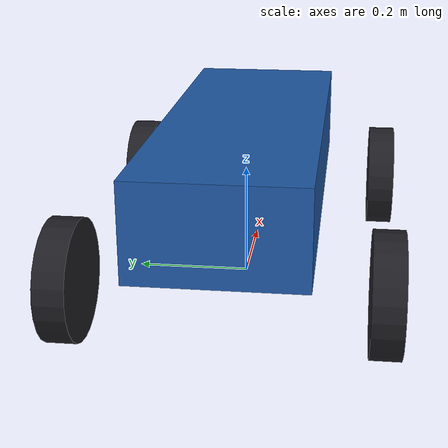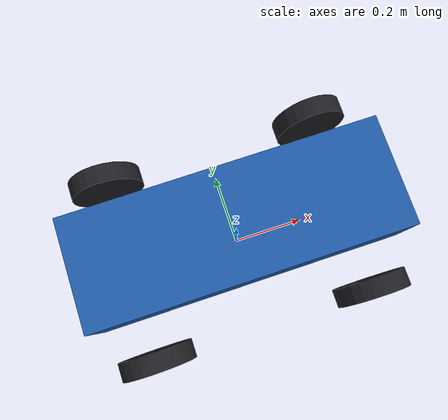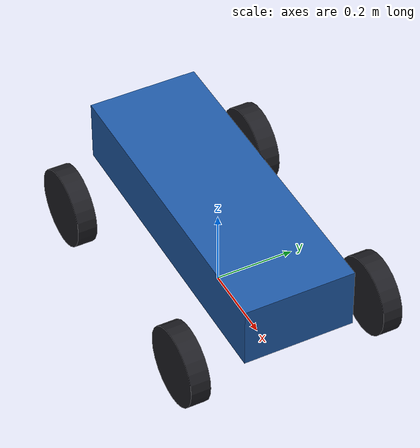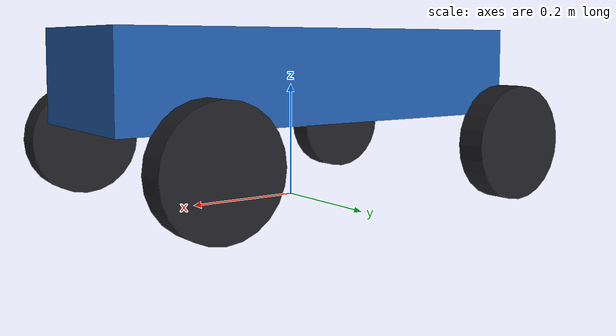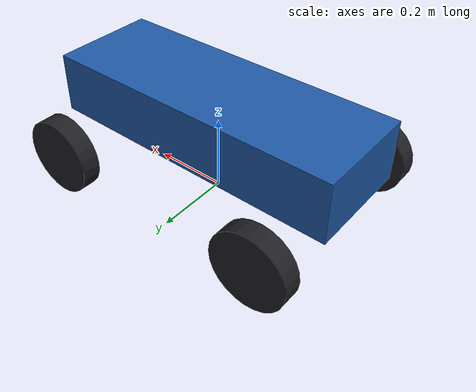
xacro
<?xml version="1.0"?>
<!-- SPDX-License-Identifier: Apache-2.0 -->
<robot xmlns:xacro="http://www.ros.org/wiki/xacro" name="swerve">
  <xacro:arg name="wheelbase" default="0.60"/>
  <xacro:arg name="track_width" default="0.50"/>
  <xacro:arg name="wheel_radius" default="0.10"/>
  <xacro:arg name="wheel_width" default="0.05"/>
  <xacro:arg name="body_length" default="0.80"/>
  <xacro:arg name="body_width" default="0.28"/>
  <xacro:arg name="body_height" default="0.16"/>
  <xacro:arg name="ground_clearance" default="0.14"/>
  <xacro:arg name="body_mass" default="20.0"/>
  <xacro:arg name="wheel_mass" default="0.6"/>
  <xacro:arg name="steering_mass" default="0.2"/>
  <xacro:arg name="steering_limit" default="1.5707963267948966"/>
  <xacro:arg name="max_wheel_speed" default="20.0"/>
  <xacro:arg name="max_steering_rate" default="2.5"/>
  <xacro:arg name="prefix" default=""/>
  <xacro:arg name="namespace" default=""/>
  <xacro:arg name="controllers_file" default=""/>
  <xacro:arg name="enable_control" default="true"/>
  <xacro:arg name="publish_ground_truth" default="false"/>
  <xacro:arg name="robot_name" default="swerve"/>
  <xacro:property name="p" value="$(arg prefix)"/>
  <xacro:property name="wb" value="$(arg wheelbase)"/>
  <xacro:property name="tw" value="$(arg track_width)"/>
  <xacro:property name="r" value="$(arg wheel_radius)"/>
  <xacro:property name="ww" value="$(arg wheel_width)"/>
  <xacro:property name="bl" value="$(arg body_length)"/>
  <xacro:property name="bw" value="$(arg body_width)"/>
  <xacro:property name="bh" value="$(arg body_height)"/>
  <xacro:property name="base_z" value="${float('$(arg ground_clearance)') + bh / 2}"/>
  <xacro:property name="bm" value="$(arg body_mass)"/>
  <xacro:property name="wm" value="$(arg wheel_mass)"/>
  <xacro:property name="sm" value="$(arg steering_mass)"/>
  <material name="body_blue"><color rgba="0.12 0.35 0.65 1"/></material>
  <material name="rubber"><color rgba="0.12 0.12 0.14 1"/></material>
  <material name="steer_orange"><color rgba="1.0 0.45 0.08 1"/></material>
  <link name="${p}base_footprint"/>
  <joint name="${p}base_joint" type="fixed">
    <parent link="${p}base_footprint"/><child link="${p}base_link"/>
    <origin xyz="0 0 ${base_z}"/>
  </joint>
  <link name="${p}base_link">
    <visual><geometry><box size="${bl} ${bw} ${bh}"/></geometry><material name="body_blue"/></visual>
    <collision><geometry><box size="${bl} ${bw} ${bh}"/></geometry></collision>
    <inertial>
      <mass value="${bm}"/>
      <inertia ixx="${bm*(bw*bw+bh*bh)/12}" iyy="${bm*(bl*bl+bh*bh)/12}"
               izz="${bm*(bl*bl+bw*bw)/12}" ixy="0" ixz="0" iyz="0"/>
    </inertial>
  </link>
  <xacro:macro name="module" params="name x y">
    <joint name="${p}${name}_steering_joint" type="revolute">
      <parent link="${p}base_link"/><child link="${p}${name}_steering_link"/>
      <origin xyz="${x} ${y} ${r-base_z}"/>
      <axis xyz="0 0 1"/>
      <limit lower="${-float('$(arg steering_limit)')}" upper="$(arg steering_limit)"
             effort="30" velocity="$(arg max_steering_rate)"/>
      <dynamics damping="0.1" friction="0.0"/>
    </joint>
    <link name="${p}${name}_steering_link">
      <visual><origin xyz="0 0 ${r*0.65}"/><geometry><box size="0.04 0.04 0.04"/></geometry><material name="steer_orange"/></visual>
      <inertial><mass value="${sm}"/>
        <inertia ixx="${sm*0.04*0.04/6}" iyy="${sm*0.04*0.04/6}" izz="${sm*0.04*0.04/6}" ixy="0" ixz="0" iyz="0"/>
      </inertial>
    </link>
    <joint name="${p}${name}_wheel_joint" type="continuous">
      <parent link="${p}${name}_steering_link"/><child link="${p}${name}_wheel_link"/>
      <axis xyz="0 1 0"/>
      <limit effort="20" velocity="$(arg max_wheel_speed)"/>
      <dynamics damping="0.01" friction="0.0"/>
    </joint>
    <link name="${p}${name}_wheel_link">
      <visual><origin rpy="${pi/2} 0 0"/><geometry><cylinder radius="${r}" length="${ww}"/></geometry><material name="rubber"/></visual>
      <collision><origin rpy="${pi/2} 0 0"/><geometry><cylinder radius="${r}" length="${ww}"/></geometry></collision>
      <inertial><mass value="${wm}"/>
        <inertia ixx="${wm*(3*r*r+ww*ww)/12}" iyy="${wm*r*r/2}"
                 izz="${wm*(3*r*r+ww*ww)/12}" ixy="0" ixz="0" iyz="0"/>
      </inertial>
    </link>
    <gazebo reference="${p}${name}_wheel_link"><mu1>1.0</mu1><mu2>1.0</mu2></gazebo>
  </xacro:macro>
  <xacro:module name="fl" x="${wb/2}" y="${tw/2}"/>
  <xacro:module name="fr" x="${wb/2}" y="${-tw/2}"/>
  <xacro:module name="rl" x="${-wb/2}" y="${tw/2}"/>
  <xacro:module name="rr" x="${-wb/2}" y="${-tw/2}"/>
  <xacro:if value="$(arg enable_control)">
    <xacro:include filename="$(find swerve_gazebo_sim)/urdf/gazebo_control.urdf.xacro"/>
    <xacro:swerve_control prefix="${p}" namespace="$(arg namespace)" controllers_file="$(arg controllers_file)"
                          wheel_speed="$(arg max_wheel_speed)" steering_limit="$(arg steering_limit)"/>
  </xacro:if>
  <xacro:if value="$(arg publish_ground_truth)">
    <gazebo>
      <plugin filename="ignition-gazebo-odometry-publisher-system" name="ignition::gazebo::systems::OdometryPublisher">
        <odom_frame>${p}world</odom_frame><robot_base_frame>${p}base_footprint</robot_base_frame>
        <odom_publish_frequency>50</odom_publish_frequency><dimensions>2</dimensions>
        <odom_topic>/model/$(arg robot_name)/odometry</odom_topic>
      </plugin>
    </gazebo>
  </xacro:if>
</robot>
